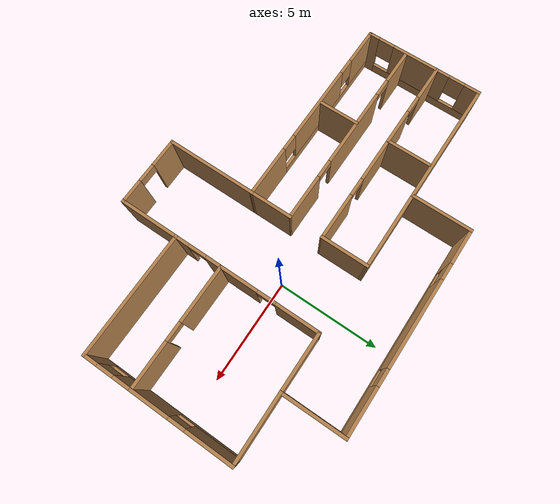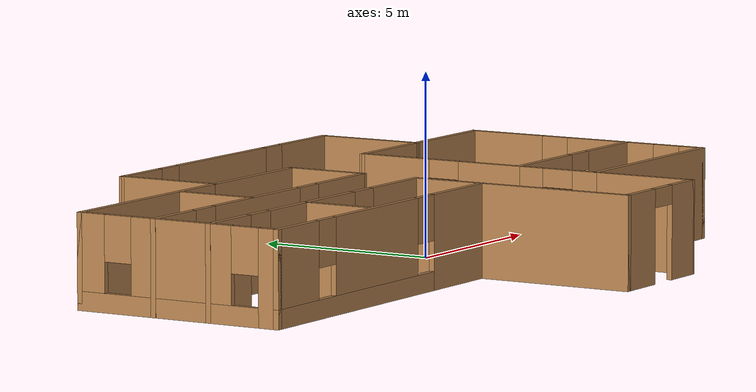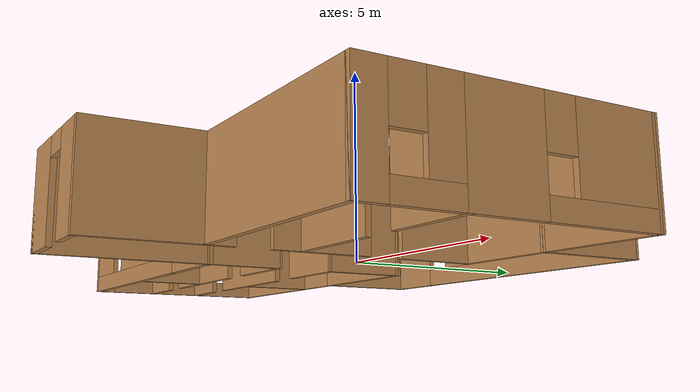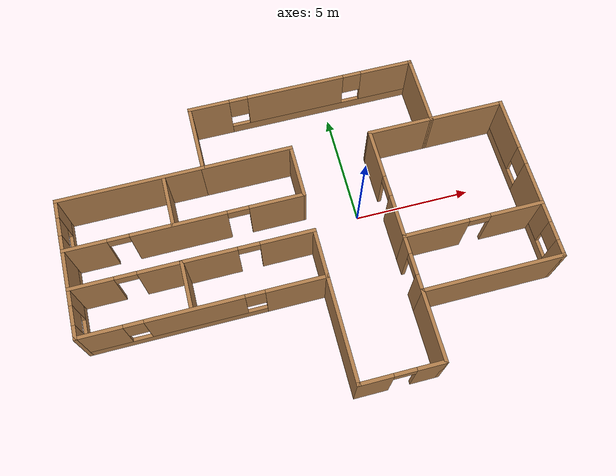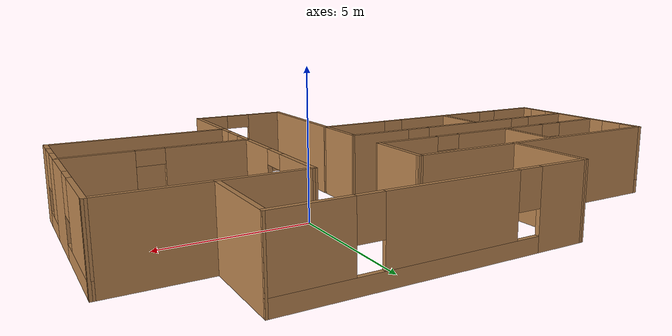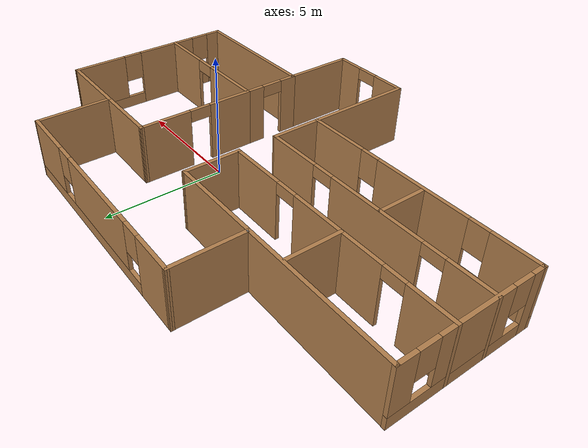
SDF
<?xml version='1.0'?>
<sdf version='1.6'>
  <model name='mybuilding'>
    <pose frame=''>-2.55762 -0.869824 0 0 -0 0</pose>
    <link name='Wall_28'>
      <pose frame=''>1.47817 6.51463 0 0 0 -0.002088</pose>
      <visual name='Wall_28_Visual_0'>
        <pose frame=''>-4.09955 0 1.25 0 -0 0</pose>
        <geometry>
          <box>
            <size>1.80617 0.15 2.5</size>
          </box>
        </geometry>
        <material>
          <script>
            <uri>file://media/materials/scripts/gazebo.material</uri>
            <name>Gazebo/Wood</name>
          </script>
          <ambient>0.921569 0.807843 0.615686 1</ambient>
        </material>
        <meta>
          <layer>0</layer>
        </meta>
      </visual>
      <collision name='Wall_28_Collision_0'>
        <geometry>
          <box>
            <size>1.80617 0.15 2.5</size>
          </box>
        </geometry>
        <pose frame=''>-4.09955 0 1.25 0 -0 0</pose>
      </collision>
      <visual name='Wall_28_Visual_1'>
        <pose frame=''>0.903086 0 0.25 0 -0 0</pose>
        <geometry>
          <box>
            <size>8.19909 0.15 0.5</size>
          </box>
        </geometry>
        <material>
          <script>
            <uri>file://media/materials/scripts/gazebo.material</uri>
            <name>Gazebo/Wood</name>
          </script>
          <ambient>0.921569 0.807843 0.615686 1</ambient>
        </material>
        <meta>
          <layer>0</layer>
        </meta>
      </visual>
      <collision name='Wall_28_Collision_1'>
        <geometry>
          <box>
            <size>8.19909 0.15 0.5</size>
          </box>
        </geometry>
        <pose frame=''>0.903086 0 0.25 0 -0 0</pose>
      </collision>
      <visual name='Wall_28_Visual_2'>
        <pose frame=''>-0.261642 0 1.5 0 -0 0</pose>
        <geometry>
          <box>
            <size>4.26964 0.15 2</size>
          </box>
        </geometry>
        <material>
          <script>
            <uri>file://media/materials/scripts/gazebo.material</uri>
            <name>Gazebo/Wood</name>
          </script>
          <ambient>0.921569 0.807843 0.615686 1</ambient>
        </material>
        <meta>
          <layer>0</layer>
        </meta>
      </visual>
      <collision name='Wall_28_Collision_2'>
        <geometry>
          <box>
            <size>4.26964 0.15 2</size>
          </box>
        </geometry>
        <pose frame=''>-0.261642 0 1.5 0 -0 0</pose>
      </collision>
      <visual name='Wall_28_Visual_3'>
        <pose frame=''>3.8379 0 1.5 0 -0 0</pose>
        <geometry>
          <box>
            <size>2.32946 0.15 2</size>
          </box>
        </geometry>
        <material>
          <script>
            <uri>file://media/materials/scripts/gazebo.material</uri>
            <name>Gazebo/Wood</name>
          </script>
          <ambient>0.921569 0.807843 0.615686 1</ambient>
        </material>
        <meta>
          <layer>0</layer>
        </meta>
      </visual>
      <collision name='Wall_28_Collision_3'>
        <geometry>
          <box>
            <size>2.32946 0.15 2</size>
          </box>
        </geometry>
        <pose frame=''>3.8379 0 1.5 0 -0 0</pose>
      </collision>
      <visual name='Wall_28_Visual_4'>
        <pose frame=''>-2.79646 0 1.9 0 -0 0</pose>
        <geometry>
          <box>
            <size>0.8 0.15 1.2</size>
          </box>
        </geometry>
        <material>
          <script>
            <uri>file://media/materials/scripts/gazebo.material</uri>
            <name>Gazebo/Wood</name>
          </script>
          <ambient>0.921569 0.807843 0.615686 1</ambient>
        </material>
        <meta>
          <layer>0</layer>
        </meta>
      </visual>
      <collision name='Wall_28_Collision_4'>
        <geometry>
          <box>
            <size>0.8 0.15 1.2</size>
          </box>
        </geometry>
        <pose frame=''>-2.79646 0 1.9 0 -0 0</pose>
      </collision>
      <visual name='Wall_28_Visual_5'>
        <pose frame=''>2.27318 0 1.9 0 -0 0</pose>
        <geometry>
          <box>
            <size>0.8 0.15 1.2</size>
          </box>
        </geometry>
        <material>
          <script>
            <uri>file://media/materials/scripts/gazebo.material</uri>
            <name>Gazebo/Wood</name>
          </script>
          <ambient>0.921569 0.807843 0.615686 1</ambient>
        </material>
        <meta>
          <layer>0</layer>
        </meta>
      </visual>
      <collision name='Wall_28_Collision_5'>
        <geometry>
          <box>
            <size>0.8 0.15 1.2</size>
          </box>
        </geometry>
        <pose frame=''>2.27318 0 1.9 0 -0 0</pose>
      </collision>
    </link>
    <link name='Wall_29'>
      <collision name='Wall_29_Collision'>
        <geometry>
          <box>
            <size>3.13154 0.15 2.5</size>
          </box>
        </geometry>
        <pose frame=''>0 0 1.25 0 -0 0</pose>
      </collision>
      <visual name='Wall_29_Visual'>
        <pose frame=''>0 0 1.25 0 -0 0</pose>
        <geometry>
          <box>
            <size>3.13154 0.15 2.5</size>
          </box>
        </geometry>
        <material>
          <script>
            <uri>file://media/materials/scripts/gazebo.material</uri>
            <name>Gazebo/Wood</name>
          </script>
          <ambient>0.921569 0.807843 0.615686 1</ambient>
        </material>
        <meta>
          <layer>0</layer>
        </meta>
      </visual>
      <pose frame=''>6.41224 5.01358 0 0 0 -1.56647</pose>
    </link>
    <link name='Wall_30'>
      <collision name='Wall_30_Collision'>
        <geometry>
          <box>
            <size>2.86813 0.15 2.5</size>
          </box>
        </geometry>
        <pose frame=''>0 0 1.25 0 -0 0</pose>
      </collision>
      <visual name='Wall_30_Visual'>
        <pose frame=''>0 0 1.25 0 -0 0</pose>
        <geometry>
          <box>
            <size>2.86813 0.15 2.5</size>
          </box>
        </geometry>
        <material>
          <script>
            <uri>file://media/materials/scripts/gazebo.material</uri>
            <name>Gazebo/Wood</name>
          </script>
          <ambient>0.921569 0.807843 0.615686 1</ambient>
        </material>
        <meta>
          <layer>0</layer>
        </meta>
      </visual>
      <pose frame=''>5.05961 3.52387 0 0 -0 3.14082</pose>
    </link>
    <link name='Wall_31'>
      <pose frame=''>3.70055 1.09992 0 0 0 -1.5708</pose>
      <visual name='Wall_31_Visual_0'>
        <pose frame=''>-1.40344 0 1.25 0 -0 0</pose>
        <geometry>
          <box>
            <size>2.19312 0.15 2.5</size>
          </box>
        </geometry>
        <material>
          <script>
            <uri>file://media/materials/scripts/gazebo.material</uri>
            <name>Gazebo/Wood</name>
          </script>
          <ambient>0.921569 0.807843 0.615686 1</ambient>
        </material>
        <meta>
          <layer>0</layer>
        </meta>
      </visual>
      <collision name='Wall_31_Collision_0'>
        <geometry>
          <box>
            <size>2.19312 0.15 2.5</size>
          </box>
        </geometry>
        <pose frame=''>-1.40344 0 1.25 0 -0 0</pose>
      </collision>
      <visual name='Wall_31_Visual_1'>
        <pose frame=''>1.54656 0 1.25 0 -0 0</pose>
        <geometry>
          <box>
            <size>1.90688 0.15 2.5</size>
          </box>
        </geometry>
        <material>
          <script>
            <uri>file://media/materials/scripts/gazebo.material</uri>
            <name>Gazebo/Wood</name>
          </script>
          <ambient>0.921569 0.807843 0.615686 1</ambient>
        </material>
        <meta>
          <layer>0</layer>
        </meta>
      </visual>
      <collision name='Wall_31_Collision_1'>
        <geometry>
          <box>
            <size>1.90688 0.15 2.5</size>
          </box>
        </geometry>
        <pose frame=''>1.54656 0 1.25 0 -0 0</pose>
      </collision>
      <visual name='Wall_31_Visual_2'>
        <pose frame=''>0.143119 0 2.25 0 -0 0</pose>
        <geometry>
          <box>
            <size>0.9 0.15 0.5</size>
          </box>
        </geometry>
        <material>
          <script>
            <uri>file://media/materials/scripts/gazebo.material</uri>
            <name>Gazebo/Wood</name>
          </script>
          <ambient>0.921569 0.807843 0.615686 1</ambient>
        </material>
        <meta>
          <layer>0</layer>
        </meta>
      </visual>
      <collision name='Wall_31_Collision_2'>
        <geometry>
          <box>
            <size>0.9 0.15 0.5</size>
          </box>
        </geometry>
        <pose frame=''>0.143119 0 2.25 0 -0 0</pose>
      </collision>
    </link>
    <link name='Wall_32'>
      <pose frame=''>6.62555 -1.32508 0 0 -0 0</pose>
      <visual name='Wall_32_Visual_0'>
        <pose frame=''>-1.59741 0 1.25 0 -0 0</pose>
        <geometry>
          <box>
            <size>2.80518 0.15 2.5</size>
          </box>
        </geometry>
        <material>
          <script>
            <uri>file://media/materials/scripts/gazebo.material</uri>
            <name>Gazebo/Wood</name>
          </script>
          <ambient>0.921569 0.807843 0.615686 1</ambient>
        </material>
        <meta>
          <layer>0</layer>
        </meta>
      </visual>
      <collision name='Wall_32_Collision_0'>
        <geometry>
          <box>
            <size>2.80518 0.15 2.5</size>
          </box>
        </geometry>
        <pose frame=''>-1.59741 0 1.25 0 -0 0</pose>
      </collision>
      <visual name='Wall_32_Visual_1'>
        <pose frame=''>1.85259 0 1.25 0 -0 0</pose>
        <geometry>
          <box>
            <size>2.29482 0.15 2.5</size>
          </box>
        </geometry>
        <material>
          <script>
            <uri>file://media/materials/scripts/gazebo.material</uri>
            <name>Gazebo/Wood</name>
          </script>
          <ambient>0.921569 0.807843 0.615686 1</ambient>
        </material>
        <meta>
          <layer>0</layer>
        </meta>
      </visual>
      <collision name='Wall_32_Collision_1'>
        <geometry>
          <box>
            <size>2.29482 0.15 2.5</size>
          </box>
        </geometry>
        <pose frame=''>1.85259 0 1.25 0 -0 0</pose>
      </collision>
      <visual name='Wall_32_Visual_2'>
        <pose frame=''>0.255176 0 2.25 0 -0 0</pose>
        <geometry>
          <box>
            <size>0.9 0.15 0.5</size>
          </box>
        </geometry>
        <material>
          <script>
            <uri>file://media/materials/scripts/gazebo.material</uri>
            <name>Gazebo/Wood</name>
          </script>
          <ambient>0.921569 0.807843 0.615686 1</ambient>
        </material>
        <meta>
          <layer>0</layer>
        </meta>
      </visual>
      <collision name='Wall_32_Collision_2'>
        <geometry>
          <box>
            <size>0.9 0.15 0.5</size>
          </box>
        </geometry>
        <pose frame=''>0.255176 0 2.25 0 -0 0</pose>
      </collision>
    </link>
    <link name='Wall_33'>
      <pose frame=''>9.55055 1.09992 0 0 -0 1.5708</pose>
      <visual name='Wall_33_Visual_0'>
        <pose frame=''>-1.55363 0 1.25 0 -0 0</pose>
        <geometry>
          <box>
            <size>1.89274 0.15 2.5</size>
          </box>
        </geometry>
        <material>
          <script>
            <uri>file://media/materials/scripts/gazebo.material</uri>
            <name>Gazebo/Wood</name>
          </script>
          <ambient>0.921569 0.807843 0.615686 1</ambient>
        </material>
        <meta>
          <layer>0</layer>
        </meta>
      </visual>
      <collision name='Wall_33_Collision_0'>
        <geometry>
          <box>
            <size>1.89274 0.15 2.5</size>
          </box>
        </geometry>
        <pose frame=''>-1.55363 0 1.25 0 -0 0</pose>
      </collision>
      <visual name='Wall_33_Visual_1'>
        <pose frame=''>0.946368 0 0.25 0 -0 0</pose>
        <geometry>
          <box>
            <size>3.10726 0.15 0.5</size>
          </box>
        </geometry>
        <material>
          <script>
            <uri>file://media/materials/scripts/gazebo.material</uri>
            <name>Gazebo/Wood</name>
          </script>
          <ambient>0.921569 0.807843 0.615686 1</ambient>
        </material>
        <meta>
          <layer>0</layer>
        </meta>
      </visual>
      <collision name='Wall_33_Collision_1'>
        <geometry>
          <box>
            <size>3.10726 0.15 0.5</size>
          </box>
        </geometry>
        <pose frame=''>0.946368 0 0.25 0 -0 0</pose>
      </collision>
      <visual name='Wall_33_Visual_2'>
        <pose frame=''>1.34637 0 1.5 0 -0 0</pose>
        <geometry>
          <box>
            <size>2.30727 0.15 2</size>
          </box>
        </geometry>
        <material>
          <script>
            <uri>file://media/materials/scripts/gazebo.material</uri>
            <name>Gazebo/Wood</name>
          </script>
          <ambient>0.921569 0.807843 0.615686 1</ambient>
        </material>
        <meta>
          <layer>0</layer>
        </meta>
      </visual>
      <collision name='Wall_33_Collision_2'>
        <geometry>
          <box>
            <size>2.30727 0.15 2</size>
          </box>
        </geometry>
        <pose frame=''>1.34637 0 1.5 0 -0 0</pose>
      </collision>
      <visual name='Wall_33_Visual_3'>
        <pose frame=''>-0.207265 0 1.9 0 -0 0</pose>
        <geometry>
          <box>
            <size>0.8 0.15 1.2</size>
          </box>
        </geometry>
        <material>
          <script>
            <uri>file://media/materials/scripts/gazebo.material</uri>
            <name>Gazebo/Wood</name>
          </script>
          <ambient>0.921569 0.807843 0.615686 1</ambient>
        </material>
        <meta>
          <layer>0</layer>
        </meta>
      </visual>
      <collision name='Wall_33_Collision_3'>
        <geometry>
          <box>
            <size>0.8 0.15 1.2</size>
          </box>
        </geometry>
        <pose frame=''>-0.207265 0 1.9 0 -0 0</pose>
      </collision>
    </link>
    <link name='Wall_34'>
      <collision name='Wall_34_Collision'>
        <geometry>
          <box>
            <size>3.28187 0.15 2.5</size>
          </box>
        </geometry>
        <pose frame=''>0 0 1.25 0 -0 0</pose>
      </collision>
      <visual name='Wall_34_Visual'>
        <pose frame=''>0 0 1.25 0 -0 0</pose>
        <geometry>
          <box>
            <size>3.28187 0.15 2.5</size>
          </box>
        </geometry>
        <material>
          <script>
            <uri>file://media/materials/scripts/gazebo.material</uri>
            <name>Gazebo/Wood</name>
          </script>
          <ambient>0.921569 0.807843 0.615686 1</ambient>
        </material>
        <meta>
          <layer>0</layer>
        </meta>
      </visual>
      <pose frame=''>7.98461 3.52387 0 0 0 -3.14092</pose>
    </link>
    <link name='Wall_40'>
      <pose frame=''>-4.62445 -2.17508 0 0 -0 3.14159</pose>
      <visual name='Wall_40_Visual_0'>
        <pose frame=''>-3.71787 0 1.25 0 -0 0</pose>
        <geometry>
          <box>
            <size>2.56426 0.15 2.5</size>
          </box>
        </geometry>
        <material>
          <script>
            <uri>file://media/materials/scripts/gazebo.material</uri>
            <name>Gazebo/Wood</name>
          </script>
          <ambient>0.921569 0.807843 0.615686 1</ambient>
        </material>
        <meta>
          <layer>0</layer>
        </meta>
      </visual>
      <collision name='Wall_40_Collision_0'>
        <geometry>
          <box>
            <size>2.56426 0.15 2.5</size>
          </box>
        </geometry>
        <pose frame=''>-3.71787 0 1.25 0 -0 0</pose>
      </collision>
      <visual name='Wall_40_Visual_1'>
        <pose frame=''>1.28213 0 0.25 0 -0 0</pose>
        <geometry>
          <box>
            <size>7.43574 0.15 0.5</size>
          </box>
        </geometry>
        <material>
          <script>
            <uri>file://media/materials/scripts/gazebo.material</uri>
            <name>Gazebo/Wood</name>
          </script>
          <ambient>0.921569 0.807843 0.615686 1</ambient>
        </material>
        <meta>
          <layer>0</layer>
        </meta>
      </visual>
      <collision name='Wall_40_Collision_1'>
        <geometry>
          <box>
            <size>7.43574 0.15 0.5</size>
          </box>
        </geometry>
        <pose frame=''>1.28213 0 0.25 0 -0 0</pose>
      </collision>
      <visual name='Wall_40_Visual_2'>
        <pose frame=''>0.337231 0 1.5 0 -0 0</pose>
        <geometry>
          <box>
            <size>3.94595 0.15 2</size>
          </box>
        </geometry>
        <material>
          <script>
            <uri>file://media/materials/scripts/gazebo.material</uri>
            <name>Gazebo/Wood</name>
          </script>
          <ambient>0.921569 0.807843 0.615686 1</ambient>
        </material>
        <meta>
          <layer>0</layer>
        </meta>
      </visual>
      <collision name='Wall_40_Collision_2'>
        <geometry>
          <box>
            <size>3.94595 0.15 2</size>
          </box>
        </geometry>
        <pose frame=''>0.337231 0 1.5 0 -0 0</pose>
      </collision>
      <visual name='Wall_40_Visual_3'>
        <pose frame=''>4.0551 0 1.5 0 -0 0</pose>
        <geometry>
          <box>
            <size>1.8898 0.15 2</size>
          </box>
        </geometry>
        <material>
          <script>
            <uri>file://media/materials/scripts/gazebo.material</uri>
            <name>Gazebo/Wood</name>
          </script>
          <ambient>0.921569 0.807843 0.615686 1</ambient>
        </material>
        <meta>
          <layer>0</layer>
        </meta>
      </visual>
      <collision name='Wall_40_Collision_3'>
        <geometry>
          <box>
            <size>1.8898 0.15 2</size>
          </box>
        </geometry>
        <pose frame=''>4.0551 0 1.5 0 -0 0</pose>
      </collision>
      <visual name='Wall_40_Visual_4'>
        <pose frame=''>-2.03574 0 1.9 0 -0 0</pose>
        <geometry>
          <box>
            <size>0.8 0.15 1.2</size>
          </box>
        </geometry>
        <material>
          <script>
            <uri>file://media/materials/scripts/gazebo.material</uri>
            <name>Gazebo/Wood</name>
          </script>
          <ambient>0.921569 0.807843 0.615686 1</ambient>
        </material>
        <meta>
          <layer>0</layer>
        </meta>
      </visual>
      <collision name='Wall_40_Collision_4'>
        <geometry>
          <box>
            <size>0.8 0.15 1.2</size>
          </box>
        </geometry>
        <pose frame=''>-2.03574 0 1.9 0 -0 0</pose>
      </collision>
      <visual name='Wall_40_Visual_5'>
        <pose frame=''>2.7102 0 1.9 0 -0 0</pose>
        <geometry>
          <box>
            <size>0.8 0.15 1.2</size>
          </box>
        </geometry>
        <material>
          <script>
            <uri>file://media/materials/scripts/gazebo.material</uri>
            <name>Gazebo/Wood</name>
          </script>
          <ambient>0.921569 0.807843 0.615686 1</ambient>
        </material>
        <meta>
          <layer>0</layer>
        </meta>
      </visual>
      <collision name='Wall_40_Collision_5'>
        <geometry>
          <box>
            <size>0.8 0.15 1.2</size>
          </box>
        </geometry>
        <pose frame=''>2.7102 0 1.9 0 -0 0</pose>
      </collision>
    </link>
    <link name='Wall_42'>
      <pose frame=''>-9.54945 0.749922 0 0 -0 1.5708</pose>
      <visual name='Wall_42_Visual_0'>
        <pose frame=''>-2.70621 0 1.25 0 -0 0</pose>
        <geometry>
          <box>
            <size>0.587571 0.15 2.5</size>
          </box>
        </geometry>
        <material>
          <script>
            <uri>file://media/materials/scripts/gazebo.material</uri>
            <name>Gazebo/Wood</name>
          </script>
          <ambient>0.921569 0.807843 0.615686 1</ambient>
        </material>
        <meta>
          <layer>0</layer>
        </meta>
      </visual>
      <collision name='Wall_42_Collision_0'>
        <geometry>
          <box>
            <size>0.587571 0.15 2.5</size>
          </box>
        </geometry>
        <pose frame=''>-2.70621 0 1.25 0 -0 0</pose>
      </collision>
      <visual name='Wall_42_Visual_1'>
        <pose frame=''>0.293786 0 0.25 0 -0 0</pose>
        <geometry>
          <box>
            <size>5.41243 0.15 0.5</size>
          </box>
        </geometry>
        <material>
          <script>
            <uri>file://media/materials/scripts/gazebo.material</uri>
            <name>Gazebo/Wood</name>
          </script>
          <ambient>0.921569 0.807843 0.615686 1</ambient>
        </material>
        <meta>
          <layer>0</layer>
        </meta>
      </visual>
      <collision name='Wall_42_Collision_1'>
        <geometry>
          <box>
            <size>5.41243 0.15 0.5</size>
          </box>
        </geometry>
        <pose frame=''>0.293786 0 0.25 0 -0 0</pose>
      </collision>
      <visual name='Wall_42_Visual_2'>
        <pose frame=''>-0.120929 0 1.5 0 -0 0</pose>
        <geometry>
          <box>
            <size>2.983 0.15 2</size>
          </box>
        </geometry>
        <material>
          <script>
            <uri>file://media/materials/scripts/gazebo.material</uri>
            <name>Gazebo/Wood</name>
          </script>
          <ambient>0.921569 0.807843 0.615686 1</ambient>
        </material>
        <meta>
          <layer>0</layer>
        </meta>
      </visual>
      <collision name='Wall_42_Collision_2'>
        <geometry>
          <box>
            <size>2.983 0.15 2</size>
          </box>
        </geometry>
        <pose frame=''>-0.120929 0 1.5 0 -0 0</pose>
      </collision>
      <visual name='Wall_42_Visual_3'>
        <pose frame=''>2.58529 0 1.5 0 -0 0</pose>
        <geometry>
          <box>
            <size>0.829428 0.15 2</size>
          </box>
        </geometry>
        <material>
          <script>
            <uri>file://media/materials/scripts/gazebo.material</uri>
            <name>Gazebo/Wood</name>
          </script>
          <ambient>0.921569 0.807843 0.615686 1</ambient>
        </material>
        <meta>
          <layer>0</layer>
        </meta>
      </visual>
      <collision name='Wall_42_Collision_3'>
        <geometry>
          <box>
            <size>0.829428 0.15 2</size>
          </box>
        </geometry>
        <pose frame=''>2.58529 0 1.5 0 -0 0</pose>
      </collision>
      <visual name='Wall_42_Visual_4'>
        <pose frame=''>-2.01243 0 1.9 0 -0 0</pose>
        <geometry>
          <box>
            <size>0.8 0.15 1.2</size>
          </box>
        </geometry>
        <material>
          <script>
            <uri>file://media/materials/scripts/gazebo.material</uri>
            <name>Gazebo/Wood</name>
          </script>
          <ambient>0.921569 0.807843 0.615686 1</ambient>
        </material>
        <meta>
          <layer>0</layer>
        </meta>
      </visual>
      <collision name='Wall_42_Collision_4'>
        <geometry>
          <box>
            <size>0.8 0.15 1.2</size>
          </box>
        </geometry>
        <pose frame=''>-2.01243 0 1.9 0 -0 0</pose>
      </collision>
      <visual name='Wall_42_Visual_5'>
        <pose frame=''>1.77057 0 1.9 0 -0 0</pose>
        <geometry>
          <box>
            <size>0.8 0.15 1.2</size>
          </box>
        </geometry>
        <material>
          <script>
            <uri>file://media/materials/scripts/gazebo.material</uri>
            <name>Gazebo/Wood</name>
          </script>
          <ambient>0.921569 0.807843 0.615686 1</ambient>
        </material>
        <meta>
          <layer>0</layer>
        </meta>
      </visual>
      <collision name='Wall_42_Collision_5'>
        <geometry>
          <box>
            <size>0.8 0.15 1.2</size>
          </box>
        </geometry>
        <pose frame=''>1.77057 0 1.9 0 -0 0</pose>
      </collision>
    </link>
    <link name='Wall_49'>
      <pose frame=''>-4.6256 1.45396 0 0 -0 0</pose>
      <visual name='Wall_49_Visual_0'>
        <pose frame=''>-4.07929 0 1.25 0 -0 0</pose>
        <geometry>
          <box>
            <size>1.84141 0.15 2.5</size>
          </box>
        </geometry>
        <material>
          <script>
            <uri>file://media/materials/scripts/gazebo.material</uri>
            <name>Gazebo/Wood</name>
          </script>
          <ambient>0.921569 0.807843 0.615686 1</ambient>
        </material>
        <meta>
          <layer>0</layer>
        </meta>
      </visual>
      <collision name='Wall_49_Collision_0'>
        <geometry>
          <box>
            <size>1.84141 0.15 2.5</size>
          </box>
        </geometry>
        <pose frame=''>-4.07929 0 1.25 0 -0 0</pose>
      </collision>
      <visual name='Wall_49_Visual_1'>
        <pose frame=''>-0.266832 0 1.25 0 -0 0</pose>
        <geometry>
          <box>
            <size>3.98351 0.15 2.5</size>
          </box>
        </geometry>
        <material>
          <script>
            <uri>file://media/materials/scripts/gazebo.material</uri>
            <name>Gazebo/Wood</name>
          </script>
          <ambient>0.921569 0.807843 0.615686 1</ambient>
        </material>
        <meta>
          <layer>0</layer>
        </meta>
      </visual>
      <collision name='Wall_49_Collision_1'>
        <geometry>
          <box>
            <size>3.98351 0.15 2.5</size>
          </box>
        </geometry>
        <pose frame=''>-0.266832 0 1.25 0 -0 0</pose>
      </collision>
      <visual name='Wall_49_Visual_2'>
        <pose frame=''>3.81246 0 1.25 0 -0 0</pose>
        <geometry>
          <box>
            <size>2.37508 0.15 2.5</size>
          </box>
        </geometry>
        <material>
          <script>
            <uri>file://media/materials/scripts/gazebo.material</uri>
            <name>Gazebo/Wood</name>
          </script>
          <ambient>0.921569 0.807843 0.615686 1</ambient>
        </material>
        <meta>
          <layer>0</layer>
        </meta>
      </visual>
      <collision name='Wall_49_Collision_2'>
        <geometry>
          <box>
            <size>2.37508 0.15 2.5</size>
          </box>
        </geometry>
        <pose frame=''>3.81246 0 1.25 0 -0 0</pose>
      </collision>
      <visual name='Wall_49_Visual_3'>
        <pose frame=''>-2.70859 0 2.25 0 -0 0</pose>
        <geometry>
          <box>
            <size>0.9 0.15 0.5</size>
          </box>
        </geometry>
        <material>
          <script>
            <uri>file://media/materials/scripts/gazebo.material</uri>
            <name>Gazebo/Wood</name>
          </script>
          <ambient>0.921569 0.807843 0.615686 1</ambient>
        </material>
        <meta>
          <layer>0</layer>
        </meta>
      </visual>
      <collision name='Wall_49_Collision_3'>
        <geometry>
          <box>
            <size>0.9 0.15 0.5</size>
          </box>
        </geometry>
        <pose frame=''>-2.70859 0 2.25 0 -0 0</pose>
      </collision>
      <visual name='Wall_49_Visual_4'>
        <pose frame=''>2.17492 0 2.25 0 -0 0</pose>
        <geometry>
          <box>
            <size>0.9 0.15 0.5</size>
          </box>
        </geometry>
        <material>
          <script>
            <uri>file://media/materials/scripts/gazebo.material</uri>
            <name>Gazebo/Wood</name>
          </script>
          <ambient>0.921569 0.807843 0.615686 1</ambient>
        </material>
        <meta>
          <layer>0</layer>
        </meta>
      </visual>
      <collision name='Wall_49_Collision_4'>
        <geometry>
          <box>
            <size>0.9 0.15 0.5</size>
          </box>
        </geometry>
        <pose frame=''>2.17492 0 2.25 0 -0 0</pose>
      </collision>
    </link>
    <link name='Wall_51'>
      <pose frame=''>-4.6256 -0.180859 0 0 -0 0</pose>
      <visual name='Wall_51_Visual_0'>
        <pose frame=''>-4.06783 0 1.25 0 -0 0</pose>
        <geometry>
          <box>
            <size>1.86434 0.15 2.5</size>
          </box>
        </geometry>
        <material>
          <script>
            <uri>file://media/materials/scripts/gazebo.material</uri>
            <name>Gazebo/Wood</name>
          </script>
          <ambient>0.921569 0.807843 0.615686 1</ambient>
        </material>
        <meta>
          <layer>0</layer>
        </meta>
      </visual>
      <collision name='Wall_51_Collision_0'>
        <geometry>
          <box>
            <size>1.86434 0.15 2.5</size>
          </box>
        </geometry>
        <pose frame=''>-4.06783 0 1.25 0 -0 0</pose>
      </collision>
      <visual name='Wall_51_Visual_1'>
        <pose frame=''>-0.220977 0 1.25 0 -0 0</pose>
        <geometry>
          <box>
            <size>4.02937 0.15 2.5</size>
          </box>
        </geometry>
        <material>
          <script>
            <uri>file://media/materials/scripts/gazebo.material</uri>
            <name>Gazebo/Wood</name>
          </script>
          <ambient>0.921569 0.807843 0.615686 1</ambient>
        </material>
        <meta>
          <layer>0</layer>
        </meta>
      </visual>
      <collision name='Wall_51_Collision_1'>
        <geometry>
          <box>
            <size>4.02937 0.15 2.5</size>
          </box>
        </geometry>
        <pose frame=''>-0.220977 0 1.25 0 -0 0</pose>
      </collision>
      <visual name='Wall_51_Visual_2'>
        <pose frame=''>3.84685 0 1.25 0 -0 0</pose>
        <geometry>
          <box>
            <size>2.30629 0.15 2.5</size>
          </box>
        </geometry>
        <material>
          <script>
            <uri>file://media/materials/scripts/gazebo.material</uri>
            <name>Gazebo/Wood</name>
          </script>
          <ambient>0.921569 0.807843 0.615686 1</ambient>
        </material>
        <meta>
          <layer>0</layer>
        </meta>
      </visual>
      <collision name='Wall_51_Collision_2'>
        <geometry>
          <box>
            <size>2.30629 0.15 2.5</size>
          </box>
        </geometry>
        <pose frame=''>3.84685 0 1.25 0 -0 0</pose>
      </collision>
      <visual name='Wall_51_Visual_3'>
        <pose frame=''>-2.68566 0 2.25 0 -0 0</pose>
        <geometry>
          <box>
            <size>0.9 0.15 0.5</size>
          </box>
        </geometry>
        <material>
          <script>
            <uri>file://media/materials/scripts/gazebo.material</uri>
            <name>Gazebo/Wood</name>
          </script>
          <ambient>0.921569 0.807843 0.615686 1</ambient>
        </material>
        <meta>
          <layer>0</layer>
        </meta>
      </visual>
      <collision name='Wall_51_Collision_3'>
        <geometry>
          <box>
            <size>0.9 0.15 0.5</size>
          </box>
        </geometry>
        <pose frame=''>-2.68566 0 2.25 0 -0 0</pose>
      </collision>
      <visual name='Wall_51_Visual_4'>
        <pose frame=''>2.2437 0 2.25 0 -0 0</pose>
        <geometry>
          <box>
            <size>0.9 0.15 0.5</size>
          </box>
        </geometry>
        <material>
          <script>
            <uri>file://media/materials/scripts/gazebo.material</uri>
            <name>Gazebo/Wood</name>
          </script>
          <ambient>0.921569 0.807843 0.615686 1</ambient>
        </material>
        <meta>
          <layer>0</layer>
        </meta>
      </visual>
      <collision name='Wall_51_Collision_4'>
        <geometry>
          <box>
            <size>0.9 0.15 0.5</size>
          </box>
        </geometry>
        <pose frame=''>2.2437 0 2.25 0 -0 0</pose>
      </collision>
    </link>
    <link name='Wall_53'>
      <collision name='Wall_53_Collision'>
        <geometry>
          <box>
            <size>2.37097 0.15 2.5</size>
          </box>
        </geometry>
        <pose frame=''>0 0 1.25 0 -0 0</pose>
      </collision>
      <visual name='Wall_53_Visual'>
        <pose frame=''>0 0 1.25 0 -0 0</pose>
        <geometry>
          <box>
            <size>2.37097 0.15 2.5</size>
          </box>
        </geometry>
        <material>
          <script>
            <uri>file://media/materials/scripts/gazebo.material</uri>
            <name>Gazebo/Wood</name>
          </script>
          <ambient>0.921569 0.807843 0.615686 1</ambient>
        </material>
        <meta>
          <layer>0</layer>
        </meta>
      </visual>
      <pose frame=''>0.299975 2.56444 0 0 0 -1.57131</pose>
    </link>
    <link name='Wall_55'>
      <collision name='Wall_55_Collision'>
        <geometry>
          <box>
            <size>2.14422 0.15 2.5</size>
          </box>
        </geometry>
        <pose frame=''>0 0 1.25 0 -0 0</pose>
      </collision>
      <visual name='Wall_55_Visual'>
        <pose frame=''>0 0 1.25 0 -0 0</pose>
        <geometry>
          <box>
            <size>2.14422 0.15 2.5</size>
          </box>
        </geometry>
        <material>
          <script>
            <uri>file://media/materials/scripts/gazebo.material</uri>
            <name>Gazebo/Wood</name>
          </script>
          <ambient>0.921569 0.807843 0.615686 1</ambient>
        </material>
        <meta>
          <layer>0</layer>
        </meta>
      </visual>
      <pose frame=''>0.299975 -1.17797 0 0 -0 1.57137</pose>
    </link>
    <link name='Wall_59'>
      <collision name='Wall_59_Collision'>
        <geometry>
          <box>
            <size>2 0.15 2.5</size>
          </box>
        </geometry>
        <pose frame=''>0 0 1.25 0 -0 0</pose>
      </collision>
      <visual name='Wall_59_Visual'>
        <pose frame=''>0 0 1.25 0 -0 0</pose>
        <geometry>
          <box>
            <size>2 0.15 2.5</size>
          </box>
        </geometry>
        <material>
          <script>
            <uri>file://media/materials/scripts/gazebo.material</uri>
            <name>Gazebo/Wood</name>
          </script>
          <ambient>0.921569 0.807843 0.615686 1</ambient>
        </material>
        <meta>
          <layer>0</layer>
        </meta>
      </visual>
      <pose frame=''>-5.08476 -1.1258 0 0 0 -1.5708</pose>
    </link>
    <link name='Wall_61'>
      <pose frame=''>3.70055 -2.50008 0 0 0 -1.5708</pose>
      <visual name='Wall_61_Visual_0'>
        <pose frame=''>-0.824504 0 1.25 0 -0 0</pose>
        <geometry>
          <box>
            <size>0.850993 0.15 2.5</size>
          </box>
        </geometry>
        <material>
          <script>
            <uri>file://media/materials/scripts/gazebo.material</uri>
            <name>Gazebo/Wood</name>
          </script>
          <ambient>1 1 1 1</ambient>
        </material>
        <meta>
          <layer>0</layer>
        </meta>
      </visual>
      <collision name='Wall_61_Collision_0'>
        <geometry>
          <box>
            <size>0.850993 0.15 2.5</size>
          </box>
        </geometry>
        <pose frame=''>-0.824504 0 1.25 0 -0 0</pose>
      </collision>
      <visual name='Wall_61_Visual_1'>
        <pose frame=''>0.875496 0 1.25 0 -0 0</pose>
        <geometry>
          <box>
            <size>0.749007 0.15 2.5</size>
          </box>
        </geometry>
        <material>
          <script>
            <uri>file://media/materials/scripts/gazebo.material</uri>
            <name>Gazebo/Wood</name>
          </script>
          <ambient>1 1 1 1</ambient>
        </material>
        <meta>
          <layer>0</layer>
        </meta>
      </visual>
      <collision name='Wall_61_Collision_1'>
        <geometry>
          <box>
            <size>0.749007 0.15 2.5</size>
          </box>
        </geometry>
        <pose frame=''>0.875496 0 1.25 0 -0 0</pose>
      </collision>
      <visual name='Wall_61_Visual_2'>
        <pose frame=''>0.050993 0 2.25 0 -0 0</pose>
        <geometry>
          <box>
            <size>0.9 0.15 0.5</size>
          </box>
        </geometry>
        <material>
          <script>
            <uri>file://media/materials/scripts/gazebo.material</uri>
            <name>Gazebo/Wood</name>
          </script>
          <ambient>1 1 1 1</ambient>
        </material>
        <meta>
          <layer>0</layer>
        </meta>
      </visual>
      <collision name='Wall_61_Collision_2'>
        <geometry>
          <box>
            <size>0.9 0.15 0.5</size>
          </box>
        </geometry>
        <pose frame=''>0.050993 0 2.25 0 -0 0</pose>
      </collision>
    </link>
    <link name='Wall_62'>
      <collision name='Wall_62_Collision'>
        <geometry>
          <box>
            <size>6 0.15 2.5</size>
          </box>
        </geometry>
        <pose frame=''>0 0 1.25 0 -0 0</pose>
      </collision>
      <visual name='Wall_62_Visual'>
        <pose frame=''>0 0 1.25 0 -0 0</pose>
        <geometry>
          <box>
            <size>6 0.15 2.5</size>
          </box>
        </geometry>
        <material>
          <script>
            <uri>file://media/materials/scripts/gazebo.material</uri>
            <name>Gazebo/Wood</name>
          </script>
          <ambient>0.921569 0.807843 0.615686 1</ambient>
        </material>
        <meta>
          <layer>0</layer>
        </meta>
      </visual>
      <pose frame=''>6.62555 -3.67508 0 0 -0 0</pose>
    </link>
    <link name='Wall_63'>
      <pose frame=''>9.55055 -2.50008 0 0 -0 1.5708</pose>
      <visual name='Wall_63_Visual_0'>
        <pose frame=''>-0.882569 0 1.25 0 -0 0</pose>
        <geometry>
          <box>
            <size>0.734862 0.15 2.5</size>
          </box>
        </geometry>
        <material>
          <script>
            <uri>file://media/materials/scripts/gazebo.material</uri>
            <name>Gazebo/Wood</name>
          </script>
          <ambient>0.921569 0.807843 0.615686 1</ambient>
        </material>
        <meta>
          <layer>0</layer>
        </meta>
      </visual>
      <collision name='Wall_63_Collision_0'>
        <geometry>
          <box>
            <size>0.734862 0.15 2.5</size>
          </box>
        </geometry>
        <pose frame=''>-0.882569 0 1.25 0 -0 0</pose>
      </collision>
      <visual name='Wall_63_Visual_1'>
        <pose frame=''>0.367431 0 0.25 0 -0 0</pose>
        <geometry>
          <box>
            <size>1.76514 0.15 0.5</size>
          </box>
        </geometry>
        <material>
          <script>
            <uri>file://media/materials/scripts/gazebo.material</uri>
            <name>Gazebo/Wood</name>
          </script>
          <ambient>0.921569 0.807843 0.615686 1</ambient>
        </material>
        <meta>
          <layer>0</layer>
        </meta>
      </visual>
      <collision name='Wall_63_Collision_1'>
        <geometry>
          <box>
            <size>1.76514 0.15 0.5</size>
          </box>
        </geometry>
        <pose frame=''>0.367431 0 0.25 0 -0 0</pose>
      </collision>
      <visual name='Wall_63_Visual_2'>
        <pose frame=''>0.767431 0 1.5 0 -0 0</pose>
        <geometry>
          <box>
            <size>0.965138 0.15 2</size>
          </box>
        </geometry>
        <material>
          <script>
            <uri>file://media/materials/scripts/gazebo.material</uri>
            <name>Gazebo/Wood</name>
          </script>
          <ambient>0.921569 0.807843 0.615686 1</ambient>
        </material>
        <meta>
          <layer>0</layer>
        </meta>
      </visual>
      <collision name='Wall_63_Collision_2'>
        <geometry>
          <box>
            <size>0.965138 0.15 2</size>
          </box>
        </geometry>
        <pose frame=''>0.767431 0 1.5 0 -0 0</pose>
      </collision>
      <visual name='Wall_63_Visual_3'>
        <pose frame=''>-0.115138 0 1.9 0 -0 0</pose>
        <geometry>
          <box>
            <size>0.8 0.15 1.2</size>
          </box>
        </geometry>
        <material>
          <script>
            <uri>file://media/materials/scripts/gazebo.material</uri>
            <name>Gazebo/Wood</name>
          </script>
          <ambient>0.921569 0.807843 0.615686 1</ambient>
        </material>
        <meta>
          <layer>0</layer>
        </meta>
      </visual>
      <collision name='Wall_63_Collision_3'>
        <geometry>
          <box>
            <size>0.8 0.15 1.2</size>
          </box>
        </geometry>
        <pose frame=''>-0.115138 0 1.9 0 -0 0</pose>
      </collision>
    </link>
    <link name='Wall_71'>
      <collision name='Wall_71_Collision'>
        <geometry>
          <box>
            <size>4.5 0.15 2.5</size>
          </box>
        </geometry>
        <pose frame=''>0 0 1.25 0 -0 0</pose>
      </collision>
      <visual name='Wall_71_Visual'>
        <pose frame=''>0 0 1.25 0 -0 0</pose>
        <geometry>
          <box>
            <size>4.5 0.15 2.5</size>
          </box>
        </geometry>
        <material>
          <script>
            <uri>file://media/materials/scripts/gazebo.material</uri>
            <name>Gazebo/Wood</name>
          </script>
          <ambient>0.921569 0.807843 0.615686 1</ambient>
        </material>
        <meta>
          <layer>0</layer>
        </meta>
      </visual>
      <pose frame=''>0.30055 -4.35008 0 0 0 -1.5708</pose>
    </link>
    <link name='Wall_72'>
      <pose frame=''>1.97555 -6.52508 0 0 -0 0</pose>
      <visual name='Wall_72_Visual_0'>
        <pose frame=''>-1.03185 0 1.25 0 -0 0</pose>
        <geometry>
          <box>
            <size>1.4363 0.15 2.5</size>
          </box>
        </geometry>
        <material>
          <script>
            <uri>file://media/materials/scripts/gazebo.material</uri>
            <name>Gazebo/Wood</name>
          </script>
          <ambient>0.921569 0.807843 0.615686 1</ambient>
        </material>
        <meta>
          <layer>0</layer>
        </meta>
      </visual>
      <collision name='Wall_72_Collision_0'>
        <geometry>
          <box>
            <size>1.4363 0.15 2.5</size>
          </box>
        </geometry>
        <pose frame=''>-1.03185 0 1.25 0 -0 0</pose>
      </collision>
      <visual name='Wall_72_Visual_1'>
        <pose frame=''>1.16815 0 1.25 0 -0 0</pose>
        <geometry>
          <box>
            <size>1.1637 0.15 2.5</size>
          </box>
        </geometry>
        <material>
          <script>
            <uri>file://media/materials/scripts/gazebo.material</uri>
            <name>Gazebo/Wood</name>
          </script>
          <ambient>0.921569 0.807843 0.615686 1</ambient>
        </material>
        <meta>
          <layer>0</layer>
        </meta>
      </visual>
      <collision name='Wall_72_Collision_1'>
        <geometry>
          <box>
            <size>1.1637 0.15 2.5</size>
          </box>
        </geometry>
        <pose frame=''>1.16815 0 1.25 0 -0 0</pose>
      </collision>
      <visual name='Wall_72_Visual_2'>
        <pose frame=''>0.136302 0 2.25 0 -0 0</pose>
        <geometry>
          <box>
            <size>0.9 0.15 0.5</size>
          </box>
        </geometry>
        <material>
          <script>
            <uri>file://media/materials/scripts/gazebo.material</uri>
            <name>Gazebo/Wood</name>
          </script>
          <ambient>0.921569 0.807843 0.615686 1</ambient>
        </material>
        <meta>
          <layer>0</layer>
        </meta>
      </visual>
      <collision name='Wall_72_Collision_2'>
        <geometry>
          <box>
            <size>0.9 0.15 0.5</size>
          </box>
        </geometry>
        <pose frame=''>0.136302 0 2.25 0 -0 0</pose>
      </collision>
    </link>
    <link name='Wall_75'>
      <collision name='Wall_75_Collision'>
        <geometry>
          <box>
            <size>3 0.15 2.5</size>
          </box>
        </geometry>
        <pose frame=''>0 0 1.25 0 -0 0</pose>
      </collision>
      <visual name='Wall_75_Visual'>
        <pose frame=''>0 0 1.25 0 -0 0</pose>
        <geometry>
          <box>
            <size>3 0.15 2.5</size>
          </box>
        </geometry>
        <material>
          <script>
            <uri>file://media/materials/scripts/gazebo.material</uri>
            <name>Gazebo/Wood</name>
          </script>
          <ambient>0.921569 0.807843 0.615686 1</ambient>
        </material>
        <meta>
          <layer>0</layer>
        </meta>
      </visual>
      <pose frame=''>3.70055 -5.10008 0 0 0 -1.5708</pose>
    </link>
    <link name='Wall_77'>
      <collision name='Wall_77_Collision'>
        <geometry>
          <box>
            <size>2.25 0.15 2.5</size>
          </box>
        </geometry>
        <pose frame=''>0 0 1.25 0 -0 0</pose>
      </collision>
      <visual name='Wall_77_Visual'>
        <pose frame=''>0 0 1.25 0 -0 0</pose>
        <geometry>
          <box>
            <size>2.25 0.15 2.5</size>
          </box>
        </geometry>
        <material>
          <script>
            <uri>file://media/materials/scripts/gazebo.material</uri>
            <name>Gazebo/Wood</name>
          </script>
          <ambient>0.921569 0.807843 0.615686 1</ambient>
        </material>
        <meta>
          <layer>0</layer>
        </meta>
      </visual>
      <pose frame=''>-5.11071 2.51584 0 0 -0 1.5708</pose>
    </link>
    <link name='Wall_81'>
      <collision name='Wall_81_Collision'>
        <geometry>
          <box>
            <size>6.25 0.15 2.5</size>
          </box>
        </geometry>
        <pose frame=''>0 0 1.25 0 -0 0</pose>
      </collision>
      <visual name='Wall_81_Visual'>
        <pose frame=''>0 0 1.25 0 -0 0</pose>
        <geometry>
          <box>
            <size>6.25 0.15 2.5</size>
          </box>
        </geometry>
        <material>
          <script>
            <uri>file://media/materials/scripts/gazebo.material</uri>
            <name>Gazebo/Wood</name>
          </script>
          <ambient>0.921569 0.807843 0.615686 1</ambient>
        </material>
        <meta>
          <layer>0</layer>
        </meta>
      </visual>
      <pose frame=''>-6.49945 3.67492 0 0 -0 0</pose>
    </link>
    <link name='Wall_86'>
      <collision name='Wall_86_Collision'>
        <geometry>
          <box>
            <size>0.15 0.15 2.5</size>
          </box>
        </geometry>
        <pose frame=''>0 0 1.25 0 -0 0</pose>
      </collision>
      <visual name='Wall_86_Visual'>
        <pose frame=''>0 0 1.25 0 -0 0</pose>
        <geometry>
          <box>
            <size>0.15 0.15 2.5</size>
          </box>
        </geometry>
        <material>
          <script>
            <uri>file://media/materials/scripts/gazebo.material</uri>
            <name>Gazebo/Grey</name>
          </script>
          <ambient>1 1 1 1</ambient>
        </material>
        <meta>
          <layer>0</layer>
        </meta>
      </visual>
      <pose frame=''>-3.44945 3.67492 0 0 -0 0</pose>
    </link>
    <link name='Wall_90'>
      <collision name='Wall_90_Collision'>
        <geometry>
          <box>
            <size>3 0.15 2.5</size>
          </box>
        </geometry>
        <pose frame=''>0 0 1.25 0 -0 0</pose>
      </collision>
      <visual name='Wall_90_Visual'>
        <pose frame=''>0 0 1.25 0 -0 0</pose>
        <geometry>
          <box>
            <size>3 0.15 2.5</size>
          </box>
        </geometry>
        <material>
          <script>
            <uri>file://media/materials/scripts/gazebo.material</uri>
            <name>Gazebo/Wood</name>
          </script>
          <ambient>0.921569 0.807843 0.615686 1</ambient>
        </material>
        <meta>
          <layer>0</layer>
        </meta>
      </visual>
      <pose frame=''>-3.44945 5.09992 0 0 0 -1.5708</pose>
    </link>
    <link name='Wall_92'>
      <collision name='Wall_92_Collision'>
        <geometry>
          <box>
            <size>3.9 0.15 2.5</size>
          </box>
        </geometry>
        <pose frame=''>0 0 1.25 0 -0 0</pose>
      </collision>
      <visual name='Wall_92_Visual'>
        <pose frame=''>0 0 1.25 0 -0 0</pose>
        <geometry>
          <box>
            <size>3.9 0.15 2.5</size>
          </box>
        </geometry>
        <material>
          <script>
            <uri>file://media/materials/scripts/gazebo.material</uri>
            <name>Gazebo/Wood</name>
          </script>
          <ambient>0.921569 0.807843 0.615686 1</ambient>
        </material>
        <meta>
          <layer>0</layer>
        </meta>
      </visual>
      <pose frame=''>-1.57445 3.67492 0 0 0 -3.14159</pose>
    </link>
    <static>1</static>
  </model>
</sdf>
